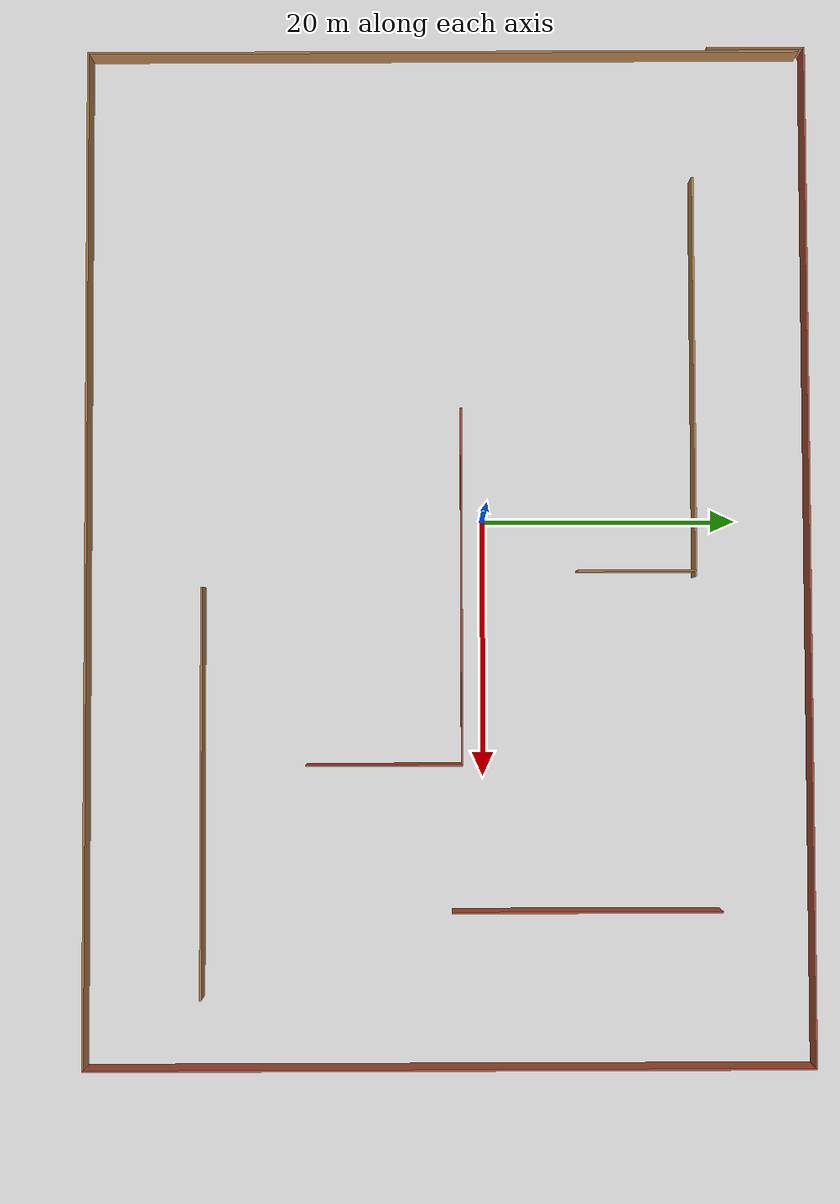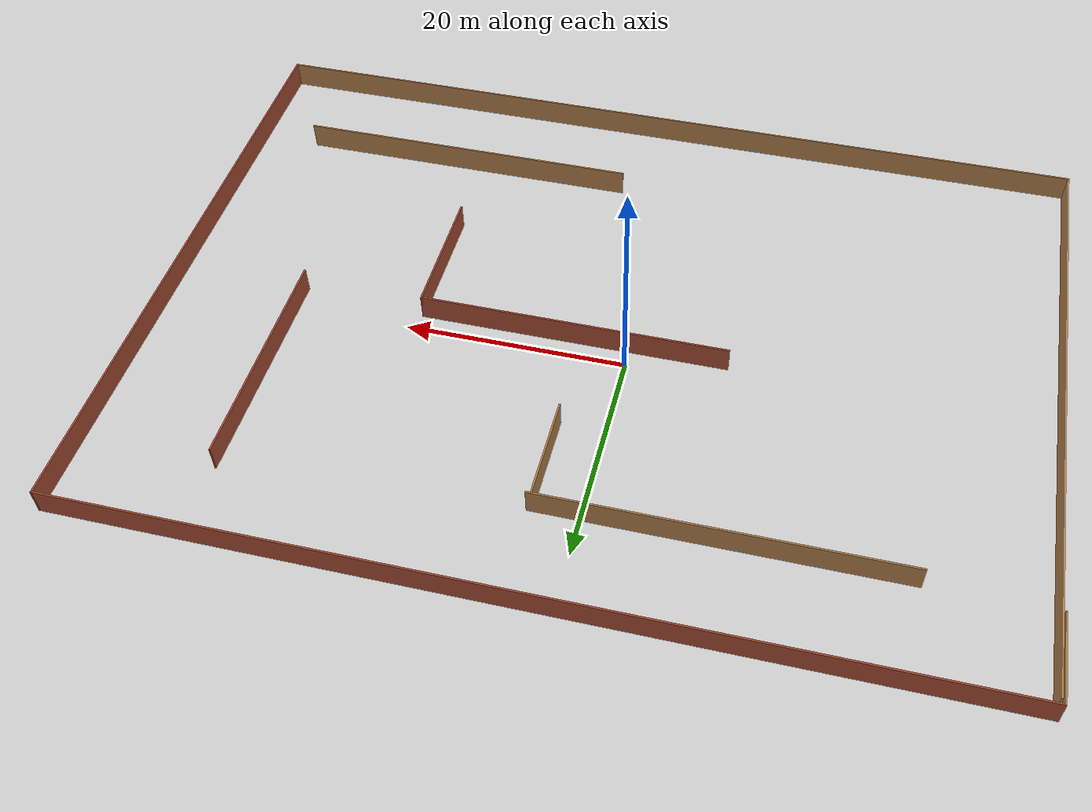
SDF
<?xml version='1.0'?>
<sdf version='1.7'>
  <model name='my_test_world'>
    <pose>2.52474 -2.71575 0 0 -0 0</pose>
    <link name='Wall_10'>
      <collision name='Wall_10_Collision'>
        <geometry>
          <box>
            <size>7.75 0.15 2.5</size>
          </box>
        </geometry>
        <pose>0 0 1.25 0 -0 0</pose>
      </collision>
      <visual name='Wall_10_Visual'>
        <pose>0 0 1.25 0 -0 0</pose>
        <geometry>
          <box>
            <size>7.75 0.15 2.5</size>
          </box>
        </geometry>
        <material>
          <script>
            <uri>file://media/materials/scripts/gazebo.material</uri>
            <name>Gazebo/Wood</name>
          </script>
          <ambient>1 1 1 1</ambient>
        </material>
        <meta>
          <layer>0</layer>
        </meta>
      </visual>
      <pose>-39.925 24.5 0 0 -0 -1.5708</pose>
    </link>
    <link name='Wall_12'>
      <collision name='Wall_12_Collision'>
        <geometry>
          <box>
            <size>31.5 0.15 2.5</size>
          </box>
        </geometry>
        <pose>0 0 1.25 0 -0 0</pose>
      </collision>
      <visual name='Wall_12_Visual'>
        <pose>0 0 1.25 0 -0 0</pose>
        <geometry>
          <box>
            <size>31.5 0.15 2.5</size>
          </box>
        </geometry>
        <material>
          <script>
            <uri>file://media/materials/scripts/gazebo.material</uri>
            <name>Gazebo/Wood</name>
          </script>
          <ambient>1 1 1 1</ambient>
        </material>
        <meta>
          <layer>0</layer>
        </meta>
      </visual>
      <pose>-13.8521 19.3847 0 0 -0 0</pose>
    </link>
    <link name='Wall_14'>
      <collision name='Wall_14_Collision'>
        <geometry>
          <box>
            <size>32 0.15 2.5</size>
          </box>
        </geometry>
        <pose>0 0 1.25 0 -0 0</pose>
      </collision>
      <visual name='Wall_14_Visual'>
        <pose>0 0 1.25 0 -0 0</pose>
        <geometry>
          <box>
            <size>32 0.15 2.5</size>
          </box>
        </geometry>
        <material>
          <script>
            <uri>file://media/materials/scripts/gazebo.material</uri>
            <name>Gazebo/Wood</name>
          </script>
          <ambient>1 1 1 1</ambient>
        </material>
        <meta>
          <layer>0</layer>
        </meta>
      </visual>
      <pose>18.574 -19.2267 0 0 -0 0</pose>
    </link>
    <link name='Wall_17'>
      <collision name='Wall_17_Collision'>
        <geometry>
          <box>
            <size>28 0.15 2.5</size>
          </box>
        </geometry>
        <pose>0 0 1.25 0 -0 0</pose>
      </collision>
      <visual name='Wall_17_Visual'>
        <pose>0 0 1.25 0 -0 0</pose>
        <geometry>
          <box>
            <size>28 0.15 2.5</size>
          </box>
        </geometry>
        <material>
          <script>
            <uri>file://media/materials/scripts/gazebo.material</uri>
            <name>Gazebo/Bricks</name>
          </script>
          <ambient>1 1 1 1</ambient>
        </material>
        <meta>
          <layer>0</layer>
        </meta>
      </visual>
      <pose>2.58979 1.06902 0 0 -0 0</pose>
    </link>
    <link name='Wall_20'>
      <collision name='Wall_20_Collision'>
        <geometry>
          <box>
            <size>12.25 0.15 2.5</size>
          </box>
        </geometry>
        <pose>0 0 1.25 0 -0 0</pose>
      </collision>
      <visual name='Wall_20_Visual'>
        <pose>0 0 1.25 0 -0 0</pose>
        <geometry>
          <box>
            <size>12.25 0.15 2.5</size>
          </box>
        </geometry>
        <material>
          <script>
            <uri>file://media/materials/scripts/gazebo.material</uri>
            <name>Gazebo/Bricks</name>
          </script>
          <ambient>1 1 1 1</ambient>
        </material>
        <meta>
          <layer>0</layer>
        </meta>
      </visual>
      <pose>16.5148 -4.98098 0 0 -0 -1.5708</pose>
    </link>
    <link name='Wall_22'>
      <collision name='Wall_22_Collision'>
        <geometry>
          <box>
            <size>9.25 0.15 2.5</size>
          </box>
        </geometry>
        <pose>0 0 1.25 0 -0 0</pose>
      </collision>
      <visual name='Wall_22_Visual'>
        <pose>0 0 1.25 0 -0 0</pose>
        <geometry>
          <box>
            <size>9.25 0.15 2.5</size>
          </box>
        </geometry>
        <material>
          <script>
            <uri>file://media/materials/scripts/gazebo.material</uri>
            <name>Gazebo/Wood</name>
          </script>
          <ambient>1 1 1 1</ambient>
        </material>
        <meta>
          <layer>0</layer>
        </meta>
      </visual>
      <pose>1.4304 14.7745 0 0 -0 -1.5708</pose>
    </link>
    <link name='Wall_24'>
      <collision name='Wall_24_Collision'>
        <geometry>
          <box>
            <size>21 0.15 2.5</size>
          </box>
        </geometry>
        <pose>0 0 1.25 0 -0 0</pose>
      </collision>
      <visual name='Wall_24_Visual'>
        <pose>0 0 1.25 0 -0 0</pose>
        <geometry>
          <box>
            <size>21 0.15 2.5</size>
          </box>
        </geometry>
        <material>
          <script>
            <uri>file://media/materials/scripts/gazebo.material</uri>
            <name>Gazebo/Bricks</name>
          </script>
          <ambient>1 1 1 1</ambient>
        </material>
        <meta>
          <layer>0</layer>
        </meta>
      </visual>
      <pose>27.9031 10.7289 0 0 -0 -1.5708</pose>
    </link>
    <link name='Wall_6'>
      <collision name='Wall_6_Collision'>
        <geometry>
          <box>
            <size>56.25 0.15 2.5</size>
          </box>
        </geometry>
        <pose>0 0 1.25 0 -0 0</pose>
      </collision>
      <visual name='Wall_6_Visual'>
        <pose>0 0 1.25 0 -0 0</pose>
        <geometry>
          <box>
            <size>56.25 0.15 2.5</size>
          </box>
        </geometry>
        <material>
          <script>
            <uri>file://media/materials/scripts/gazebo.material</uri>
            <name>Gazebo/Wood</name>
          </script>
          <ambient>1 1 1 1</ambient>
        </material>
        <meta>
          <layer>0</layer>
        </meta>
      </visual>
      <pose>-39.675 -0.25 0 0 -0 -1.5708</pose>
    </link>
    <link name='Wall_7'>
      <collision name='Wall_7_Collision'>
        <geometry>
          <box>
            <size>79.75 0.15 2.5</size>
          </box>
        </geometry>
        <pose>0 0 1.25 0 -0 0</pose>
      </collision>
      <visual name='Wall_7_Visual'>
        <pose>0 0 1.25 0 -0 0</pose>
        <geometry>
          <box>
            <size>79.75 0.15 2.5</size>
          </box>
        </geometry>
        <material>
          <script>
            <uri>file://media/materials/scripts/gazebo.material</uri>
            <name>Gazebo/Wood</name>
          </script>
          <ambient>1 1 1 1</ambient>
        </material>
        <meta>
          <layer>0</layer>
        </meta>
      </visual>
      <pose>0.124998 -28.3 0 0 -0 0</pose>
    </link>
    <link name='Wall_8'>
      <collision name='Wall_8_Collision'>
        <geometry>
          <box>
            <size>56.75 0.15 2.5</size>
          </box>
        </geometry>
        <pose>0 0 1.25 0 -0 0</pose>
      </collision>
      <visual name='Wall_8_Visual'>
        <pose>0 0 1.25 0 -0 0</pose>
        <geometry>
          <box>
            <size>56.75 0.15 2.5</size>
          </box>
        </geometry>
        <material>
          <script>
            <uri>file://media/materials/scripts/gazebo.material</uri>
            <name>Gazebo/Bricks</name>
          </script>
          <ambient>1 1 1 1</ambient>
        </material>
        <meta>
          <layer>0</layer>
        </meta>
      </visual>
      <pose>39.925 0 0 0 -0 1.5708</pose>
    </link>
    <link name='Wall_9'>
      <collision name='Wall_9_Collision'>
        <geometry>
          <box>
            <size>80 0.15 2.5</size>
          </box>
        </geometry>
        <pose>0 0 1.25 0 -0 0</pose>
      </collision>
      <visual name='Wall_9_Visual'>
        <pose>0 0 1.25 0 -0 0</pose>
        <geometry>
          <box>
            <size>80 0.15 2.5</size>
          </box>
        </geometry>
        <material>
          <script>
            <uri>file://media/materials/scripts/gazebo.material</uri>
            <name>Gazebo/Bricks</name>
          </script>
          <ambient>1 1 1 1</ambient>
        </material>
        <meta>
          <layer>0</layer>
        </meta>
      </visual>
      <pose>-2e-06 28.3 0 0 -0 3.14159</pose>
    </link>
    <static>1</static>
  </model>
</sdf>
